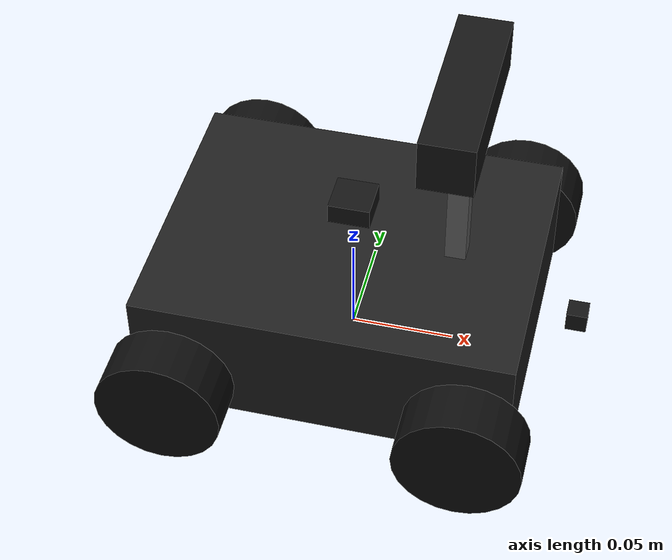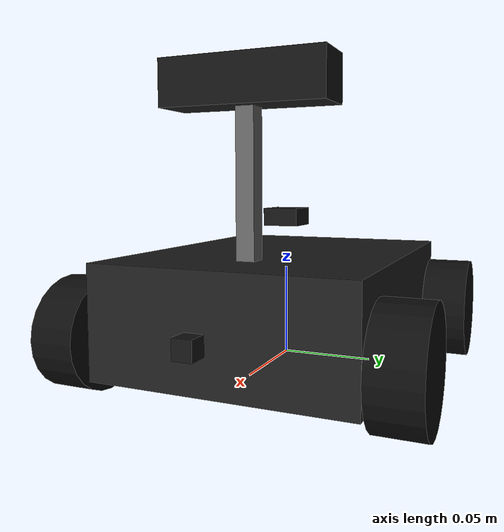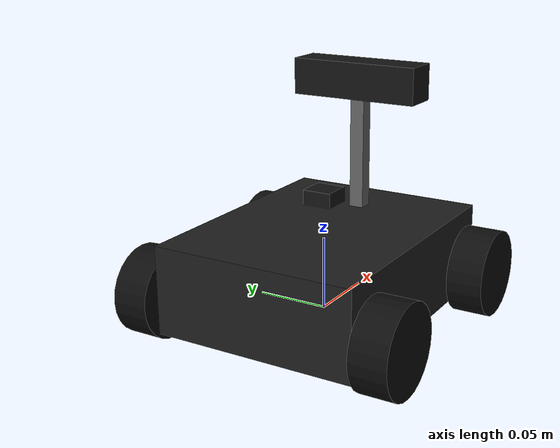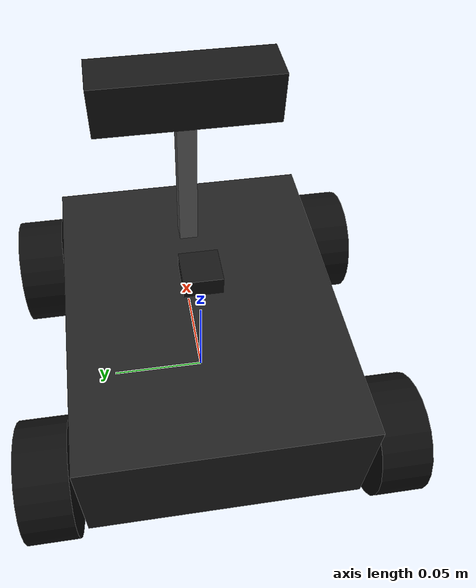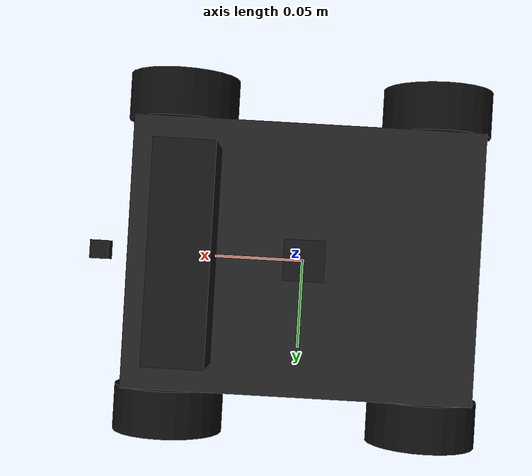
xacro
<?xml version="1.0"?>
<robot name="custom_bot" xmlns:xacro="http://www.ros.org/wiki/xacro">

  <!-- PARAMETERS - estimated from photo, adjust once you measure   -->
  <!-- the real chassis with calipers/tape measure                  -->
  <xacro:property name="base_length" value="0.18"/>
  <xacro:property name="base_width"  value="0.14"/>
  <xacro:property name="base_height" value="0.06"/>
  <xacro:property name="base_mass"   value="1.5"/>    <!-- kg, board stack + frame -->

  <xacro:property name="wheel_radius" value="0.03"/>
  <xacro:property name="wheel_width"  value="0.025"/>
  <xacro:property name="wheel_mass"   value="0.08"/>  <!-- kg -->

  <xacro:property name="wheel_x_offset" value="0.07"/>
  <xacro:property name="wheel_y_offset" value="0.085"/>
  <xacro:property name="wheel_z_offset" value="-0.01"/>

  <!-- camera sits on a raised front bracket, well above the chassis -->
  <xacro:property name="camera_mount_height" value="0.09"/>
  <xacro:property name="camera_x_offset" value="0.05"/>

  <xacro:property name="stereo_baseline" value="0.09"/>
  <xacro:property name="stereo_hfov"     value="1.5708"/>
  <xacro:property name="stereo_width"    value="640"/>
  <xacro:property name="stereo_height"   value="480"/>
  <xacro:property name="stereo_fps"      value="20.0"/>

  <!-- GPS antenna sits top-center, clear sky view. Placeholder height,
       adjust once the hardware team picks a final enclosure/mast. -->
  <xacro:property name="gps_z_offset" value="${base_height/2 + 0.02}"/>

  <!-- MATERIALS                                                     -->
  <material name="chassis_dark"><color rgba="0.12 0.12 0.12 1"/></material>
  <material name="wheel_yellow"><color rgba="0.9 0.8 0.1 1"/></material>
  <material name="wheel_black"><color rgba="0.05 0.05 0.05 1"/></material>
  <material name="sensor_black"><color rgba="0.08 0.08 0.08 1"/></material>
  <material name="bracket_gray"><color rgba="0.4 0.4 0.4 1"/></material>

  <!-- MACRO: WHEEL (yellow rim + black tire, matches photo)         -->
  <xacro:macro name="wheel" params="prefix x_reflect y_reflect">
    <link name="${prefix}_wheel_link">
      <visual>
        <origin xyz="0 0 0" rpy="1.5708 0 0"/>
        <geometry><cylinder radius="${wheel_radius}" length="${wheel_width}"/></geometry>
        <material name="wheel_black"/>
      </visual>
      <collision>
        <origin xyz="0 0 0" rpy="1.5708 0 0"/>
        <geometry><cylinder radius="${wheel_radius}" length="${wheel_width}"/></geometry>
      </collision>
      <inertial>
        <mass value="${wheel_mass}"/>
        <inertia ixx="0.00003" ixy="0" ixz="0" iyy="0.00003" iyz="0" izz="0.00003"/>
      </inertial>
    </link>

    <joint name="${prefix}_wheel_joint" type="continuous">
      <parent link="base_link"/>
      <child link="${prefix}_wheel_link"/>
      <origin xyz="${x_reflect*wheel_x_offset} ${y_reflect*wheel_y_offset} ${wheel_z_offset}" rpy="0 0 0"/>
      <axis xyz="0 1 0"/>
    </joint>
  </xacro:macro>

  <!-- BASE                                                          -->
  <link name="base_footprint"/>

  <link name="base_link">
    <visual>
      <geometry><box size="${base_length} ${base_width} ${base_height}"/></geometry>
      <material name="chassis_dark"/>
    </visual>
    <collision>
      <geometry><box size="${base_length} ${base_width} ${base_height}"/></geometry>
    </collision>
    <inertial>
      <mass value="${base_mass}"/>
      <inertia ixx="0.004" ixy="0" ixz="0" iyy="0.006" iyz="0" izz="0.008"/>
    </inertial>
  </link>

  <joint name="base_joint" type="fixed">
    <parent link="base_footprint"/>
    <child link="base_link"/>
    <origin xyz="0 0 ${wheel_radius}" rpy="0 0 0"/>
  </joint>

  <!-- Four independently driven wheels, wide stance like the photo -->
  <xacro:wheel prefix="front_left"  x_reflect="1"  y_reflect="1"/>
  <xacro:wheel prefix="front_right" x_reflect="1"  y_reflect="-1"/>
  <xacro:wheel prefix="rear_left"   x_reflect="-1" y_reflect="1"/>
  <xacro:wheel prefix="rear_right"  x_reflect="-1" y_reflect="-1"/>

  <!-- CAMERA MOUNT - raised bracket + camera, front of chassis      -->
  <link name="camera_bracket_link">
    <visual>
      <geometry><box size="0.01 0.01 ${camera_mount_height}"/></geometry>
      <material name="bracket_gray"/>
    </visual>
  </link>
  <joint name="camera_bracket_joint" type="fixed">
    <parent link="base_link"/>
    <child link="camera_bracket_link"/>
    <origin xyz="${camera_x_offset} 0 ${base_height/2 + camera_mount_height/2}" rpy="0 0 0"/>
  </joint>

  <link name="camera_link">
    <visual>
      <geometry><box size="0.025 0.09 0.025"/></geometry>
      <material name="sensor_black"/>
    </visual>
    <collision>
      <geometry><box size="0.025 0.09 0.025"/></geometry>
    </collision>
    <inertial>
      <mass value="0.05"/>
      <inertia ixx="0.00001" ixy="0" ixz="0" iyy="0.00001" iyz="0" izz="0.00001"/>
    </inertial>
  </link>
  <joint name="camera_joint" type="fixed">
    <parent link="camera_bracket_link"/>
    <child link="camera_link"/>
    <origin xyz="0 0 ${camera_mount_height/2}" rpy="0 0 0"/>
  </joint>

  <!-- STEREO PAIR: camera_link is the rig's center; the two imagers   -->
  <!-- sit at +/- stereo_baseline/2 along its Y axis (left = +Y, ROS   -->
  <!-- convention). Each imager is an x-forward link (the direction a  -->
  <!-- gz camera sensor looks) with a child *_optical_link carrying    -->
  <!-- the z-forward optical convention; gz_frame_id points at the     -->
  <!-- optical link so image/camera_info headers match TF.             -->
  <!-- Both imagers are parallel and distortion-free, i.e. the images  -->
  <!-- are already rectified, so no stereo_image_proc needed in sim.    -->
  <xacro:macro name="stereo_imager" params="side y_offset">
    <link name="camera_${side}_link">
      <inertial>
        <mass value="0.01"/>
        <inertia ixx="0.000001" ixy="0" ixz="0" iyy="0.000001" iyz="0" izz="0.000001"/>
      </inertial>
    </link>
    <joint name="camera_${side}_joint" type="fixed">
      <parent link="camera_link"/>
      <child link="camera_${side}_link"/>
      <origin xyz="0 ${y_offset} 0" rpy="0 0 0"/>
    </joint>

    <link name="camera_${side}_optical_link"/>
    <joint name="camera_${side}_optical_joint" type="fixed">
      <parent link="camera_${side}_link"/>
      <child link="camera_${side}_optical_link"/>
      <origin xyz="0 0 0" rpy="${-pi/2} 0 ${-pi/2}"/>
    </joint>

    <gazebo reference="camera_${side}_link">
      <sensor type="camera" name="stereo_${side}">
        <always_on>true</always_on>
        <update_rate>${stereo_fps}</update_rate>
        <topic>stereo/${side}/image</topic>
        <gz_frame_id>camera_${side}_optical_link</gz_frame_id>
        <camera>
          <camera_info_topic>stereo/${side}/camera_info</camera_info_topic>
          <horizontal_fov>${stereo_hfov}</horizontal_fov>
          <image><width>${stereo_width}</width><height>${stereo_height}</height><format>R8G8B8</format></image>
          <clip><near>0.02</near><far>300</far></clip>
        </camera>
      </sensor>
    </gazebo>
  </xacro:macro>

  <xacro:stereo_imager side="left"  y_offset="${stereo_baseline/2}"/>
  <xacro:stereo_imager side="right" y_offset="${-stereo_baseline/2}"/>

  <!-- IMU                                                           -->
  <link name="imu_link">
    <inertial>
      <mass value="0.001"/>
      <inertia ixx="0.000001" ixy="0" ixz="0" iyy="0.000001" iyz="0" izz="0.000001"/>
    </inertial>
  </link>
  <joint name="imu_joint" type="fixed">
    <parent link="base_link"/>
    <child link="imu_link"/>
    <origin xyz="0 0 0" rpy="0 0 0"/>
  </joint>

  <!-- TIME-OF-FLIGHT (VL53L1X) - FRONT                              -->
  <!-- Mount position is a placeholder: hardware team hasn't picked  -->
  <!-- final placement yet. Currently sits front-center at chassis   -->
  <!-- edge height. Update x/y/z below once that's decided.          -->
  <xacro:property name="tof_x_offset" value="${base_length/2 + 0.02}"/>
  <xacro:property name="tof_z_offset" value="0.0"/>

  <link name="tof_front_link">
    <visual>
      <geometry><box size="0.01 0.01 0.01"/></geometry>
      <material name="sensor_black"/>
    </visual>
    <inertial>
      <mass value="0.005"/>
      <inertia ixx="0.000001" ixy="0" ixz="0" iyy="0.000001" iyz="0" izz="0.000001"/>
    </inertial>
  </link>
  <joint name="tof_front_joint" type="fixed">
    <parent link="base_link"/>
    <child link="tof_front_link"/>
    <origin xyz="${tof_x_offset} 0 ${tof_z_offset}" rpy="0 0 0"/>
  </joint>

  <!-- GPS - top-center mount, placeholder position                 -->
  <!-- Mount position is a placeholder like the ToF: hardware team   -->
  <!-- hasn't picked final enclosure placement yet. Sensor/plugin    -->
  <!-- block comes in a later step; this just establishes the        -->
  <!-- frame so TF is correct first.                                 -->
  <link name="gps_link">
    <visual>
      <geometry><box size="0.02 0.02 0.01"/></geometry>
      <material name="sensor_black"/>
    </visual>
    <inertial>
      <mass value="0.01"/>
      <inertia ixx="0.000001" ixy="0" ixz="0" iyy="0.000001" iyz="0" izz="0.000001"/>
    </inertial>
  </link>
  <joint name="gps_joint" type="fixed">
    <parent link="base_link"/>
    <child link="gps_link"/>
    <origin xyz="0 0 ${gps_z_offset}" rpy="0 0 0"/>
  </joint>

  <!-- GZ-SIM: skid-steer drive (4 independently driven wheels,      -->
  <!-- differential steering left-pair vs right-pair)                -->
  <!-- gz-sim 8's DiffDrive has NO publish_odom / publish_odom_tf /   -->
  <!-- publish_wheel_tf switches (not in its documented parameter     -->
  <!-- list); those tags were silently ignored and DiffDrive kept     -->
  <!-- publishing its own odom->base_footprint TF. They are removed,  -->
  <!-- plugin can never collide with the EKF's odom->base_footprint.  -->
  <!-- Real odom TF comes from robot_localization only.               -->
  <gazebo>
    <plugin filename="gz-sim-diff-drive-system" name="gz::sim::systems::DiffDrive">
      <update_rate>50</update_rate>

      <!-- front pair -->
      <left_joint>front_left_wheel_joint</left_joint>
      <right_joint>front_right_wheel_joint</right_joint>

      <!-- rear pair -->
      <left_joint>rear_left_wheel_joint</left_joint>
      <right_joint>rear_right_wheel_joint</right_joint>

      <wheel_separation>${wheel_y_offset*2}</wheel_separation>
      <wheel_radius>${wheel_radius}</wheel_radius>

      <max_wheel_torque>10</max_wheel_torque>
      <max_wheel_acceleration>2.0</max_wheel_acceleration>

      <topic>cmd_vel</topic>
      <odom_publish_frequency>50</odom_publish_frequency>
    </plugin>
  </gazebo>

  <!-- GZ-SIM: ToF (VL53L1X) sensor - front                           -->
  <!-- libgazebo_ros_ray_sensor.so is gone. Harmonic has no built-in   -->
  <!-- sensor that emits a single sensor_msgs/Range the way the old    -->
  <!-- plugin's output_type did — the closest native equivalent is a  -->
  <!-- straight ahead, matching the real 1-beam ToF.                   -->
  <!-- ** Message type change, flagging explicitly: ** this now        -->
  <!-- publishes sensor_msgs/LaserScan (via the bridge), not            -->
  <!-- sensor_msgs/Range like before. If anything downstream            -->
  <!-- subscribes expecting Range, it'll need a small adapter node,     -->
  <!-- or you can read scan.ranges[0] directly.                         -->
  <gazebo reference="tof_front_link">
    <sensor type="gpu_lidar" name="tof_front_sensor">
      <update_rate>20.0</update_rate>
      <always_on>true</always_on>
      <visualize>true</visualize>
      <topic>tof_front/scan</topic>
      <gz_frame_id>tof_front_link</gz_frame_id>
      <lidar>
        <scan>
          <!-- SINGLE-BEAM ToF (matches the real hardware: 1 beam, straight   -->
          <!-- ahead, no vertical spread).                                      -->
          <!-- Why 2 horizontal samples 1e-6 rad apart instead of samples=1:    -->
          <!-- with samples=1 the LaserScan angle_increment is (max-min)/0,     -->
          <!-- reported as NaN in an older Ignition report (rviz issue #1541),  -->
          <!-- and consumers compute angle = angle_min + i*angle_increment, so  -->
          <!-- a NaN would silently drop the point in the costmap / collision   -->
          <!-- monitor. Two rays 1e-6 rad apart are physically one beam but     -->
          <!-- give a finite increment. If you verify samples=1 publishes a     -->
          <!-- finite angle_increment in your setup, you can change it back.    -->
          <horizontal>
            <samples>2</samples>
            <resolution>1</resolution>
            <min_angle>0.0</min_angle>
            <max_angle>0.000001</max_angle>
          </horizontal>
          <vertical>
            <samples>1</samples>
            <resolution>1</resolution>
            <min_angle>0.0</min_angle>
            <max_angle>0.0</max_angle>
          </vertical>
        </scan>
        <range>
          <min>0.04</min>
          <max>8.0</max>
          <resolution>0.001</resolution>
        </range>
        <noise>
          <type>gaussian</type>
          <mean>0.0</mean>
          <stddev>0.01</stddev>  <!-- VL53L1X is +/-1-2cm typical, tune once calibrated -->
        </noise>
      </lidar>
    </sensor>
  </gazebo>

  <!-- GZ-SIM: GPS (NavSat) sensor                                    -->
  <!-- Like the camera/IMU, this is native to Harmonic's Sensors      -->
  <!-- type="navsat"> block. It emits gz.msgs.NavSat, which the       -->
  <!-- bridge config (next step) maps to sensor_msgs/NavSatFix.       -->
  <!-- update_rate is deliberately slow (5 Hz); real consumer GPS     -->
  <!-- modules update at 1-10 Hz, much slower than IMU/ToF. Noise     -->
  <!-- stddevs below are rough placeholders for an uncorrected        -->
  <!-- consumer GPS (~1.5m horizontal, ~3m vertical); tighten these   -->
  <!-- once you know the actual module (e.g. RTK would be far        -->
  <!-- better than this).                                             -->
  <gazebo reference="gps_link">
    <sensor type="navsat" name="gps_sensor">
      <update_rate>5.0</update_rate>
      <always_on>true</always_on>
      <topic>gps/fix</topic>
      <gz_frame_id>gps_link</gz_frame_id>
      <navsat>
        <position_sensing>
          <horizontal>
            <noise type="gaussian">
              <mean>0.0</mean>
              <stddev>1.5</stddev>
            </noise>
          </horizontal>
          <vertical>
            <noise type="gaussian">
              <mean>0.0</mean>
              <stddev>3.0</stddev>
            </noise>
          </vertical>
        </position_sensing>
      </navsat>
    </sensor>
  </gazebo>

  <!-- GZ-SIM GROUND TRUTH POSE - sim-only, feeds the perfect-map    -->
  <!-- localization bridge. Not present on real hardware.             -->
  <!-- libgazebo_ros_p3d.so -> gz-sim-odometry-publisher-system. This  -->
  <!-- is the standard drop-in replacement for p3d: it publishes       -->
  <!-- ground-truth odometry computed directly from the model's true   -->
  <!-- pose (not from wheel encoders), same as p3d did. It only        -->
  <!-- publishes an odometry message — no tf — so it can't collide   -->
  <!-- with the wheel odometry's /tf output above.                     -->
  <gazebo>
    <plugin filename="gz-sim-odometry-publisher-system" name="gz::sim::systems::OdometryPublisher">
      <odom_frame>map</odom_frame>
      <robot_base_frame>base_footprint</robot_base_frame>
      <odom_topic>ground_truth/pose</odom_topic>
      <odom_publish_frequency>30</odom_publish_frequency>
      <dimensions>3</dimensions>
    </plugin>
  </gazebo>

  <!-- GZ-SIM: IMU sensor                                             -->
  <!-- libgazebo_ros_imu_sensor.so is gone. Like the camera, IMU is    -->
  <!-- native SDF and the Sensors system simulates it directly — the  -->
  <!-- unchanged from the classic-Gazebo version. Only the plugin      -->
  <!-- remapping for naming the output.                                -->
  <gazebo reference="imu_link">
    <sensor type="imu" name="imu_sensor">
      <always_on>true</always_on>
      <update_rate>100.0</update_rate>
      <topic>imu/data</topic>
      <gz_frame_id>imu_link</gz_frame_id>
      <imu>
        <angular_velocity>
          <x><noise type="gaussian"><mean>0.0</mean><stddev>0.0002</stddev></noise></x>
          <y><noise type="gaussian"><mean>0.0</mean><stddev>0.0002</stddev></noise></y>
          <z><noise type="gaussian"><mean>0.0</mean><stddev>0.0002</stddev></noise></z>
        </angular_velocity>
        <linear_acceleration>
          <x><noise type="gaussian"><mean>0.0</mean><stddev>0.017</stddev></noise></x>
          <y><noise type="gaussian"><mean>0.0</mean><stddev>0.017</stddev></noise></y>
          <z><noise type="gaussian"><mean>0.0</mean><stddev>0.017</stddev></noise></z>
        </linear_acceleration>
      </imu>
    </sensor>
  </gazebo>

</robot>
